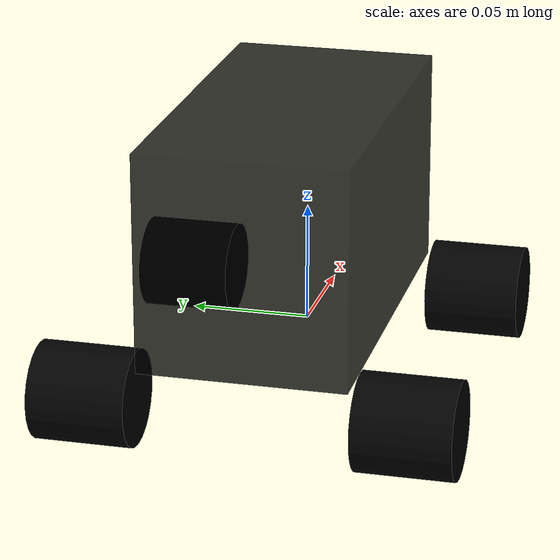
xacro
<?xml version="1.0"?>
<robot xmlns:xacro="http://www.ros.org/wiki/xacro">

    <xacro:include filename="inertial_macros.xacro"/>

    <material name="black">
        <color rgba="0 0 0 1"/>
    </material>

    <material name="grey">
        <color rgba="0 0 0 0.8"/>
    </material>

    <!--    Base Link-->
    <link name="base_link">

    </link>

<!--    Chassis-->
    <joint name="chassis_joint" type="fixed">
        <parent link="base_link"/>
        <child link="chassis"/>
        <origin xyz="-0.1 0 0"/>
    </joint>

    <link name="chassis">
        <visual>
            <origin xyz="0.07 0 0.06"/>
            <geometry>
                <box size="0.16 0.085 0.09"/>
            </geometry>
            <material name="grey"/>
        </visual>
        <collision>
            <origin xyz="0.07 0 0.06"/>
            <geometry>
                <box size="0.16 0.085 0.09"/>
            </geometry>
        </collision>
        <xacro:inertial_box mass="0.5" x="0.16" y="0.085" z="0.09">
            <origin xyz="0.07 0 0.06"/>
        </xacro:inertial_box>
    </link>

    <gazebo reference="chassis">
        <material>Gazebo/Grey</material>
    </gazebo>

<!--Left  wheel  link-->
    <joint name="left_wheel_joint" type="continuous">
        <parent link="base_link"/>
        <child link="left_wheel"/>
        <origin xyz="-0.1 0.065 0"  rpy="-${pi/2} 0 0"/>
        <axis xyz="0 0 1"/>
    </joint>

    <link  name="left_wheel">
        <visual>
            <geometry>
                <cylinder radius="0.02" length="0.04"/>
            </geometry>
            <material name="black"/>
        </visual>
        <collision>
            <geometry>
                <cylinder radius="0.02" length="0.04"/>
            </geometry>
        </collision>
        <xacro:inertial_cylinder mass="0.1" length="0.04" radius="0.02">
            <origin xyz="0 0 0" rpy="0 0 0"/>
        </xacro:inertial_cylinder>
    </link>

    <gazebo reference="left_wheel">
        <material>Gazebo/Black</material>
    </gazebo>

    <!--Right  wheel  link-->
    <joint name="right_wheel_joint" type="continuous">
        <parent link="base_link"/>
        <child link="right_wheel"/>
        <origin xyz="-0.1 -0.065 0"  rpy="${pi/2} 0 0"/>
        <axis xyz="0 0 -1"/>
    </joint>

    <link  name="right_wheel">
        <visual>
            <geometry>
                <cylinder radius="0.02" length="0.04"/>
            </geometry>
            <material name="black"/>
        </visual>
        <collision>
            <geometry>
                <cylinder radius="0.02" length="0.04"/>
            </geometry>
        </collision>
        <xacro:inertial_cylinder mass="0.1" length="0.04" radius="0.02">
            <origin xyz="0 0 0" rpy="0 0 0"/>
        </xacro:inertial_cylinder>
    </link>

    <gazebo reference="right_wheel">
        <material>Gazebo/Black</material>
    </gazebo>

    <!--Left front wheel link-->
    <joint name="left_front_wheel_joint" type="fixed">
        <parent link="base_link"/>
        <child link="left_front_wheel"/>
        <origin xyz="0.05 0.065 0"  rpy="-${pi/2} 0 0"/>
        <axis xyz="0 0 1"/>
    </joint>

    <link  name="left_front_wheel">
        <visual>
            <geometry>
                <cylinder radius="0.02" length="0.04"/>
            </geometry>
            <material name="black"/>
        </visual>
        <collision>v
            <geometry>
                <cylinder radius="0.02" length="0.04"/>
            </geometry>
        </collision>
        <xacro:inertial_cylinder mass="0.1" length="0.04" radius="0.02">
            <origin xyz="0 0 0" rpy="0 0 0"/>
        </xacro:inertial_cylinder>
    </link>

    <gazebo reference="left_front_wheel">
        <material>Gazebo/Black</material>
        <mu1 value="0.001"/>
        <mu2 value="0.001"/>
    </gazebo>

    <!--Right  rear  wheel  link-->
    <joint name="right_front_wheel_joint" type="fixed">
        <parent link="base_link"/>
        <child link="right_front_wheel"/>
        <origin xyz="0.05 -0.065 0"  rpy="${pi/2} 0 0"/>
        <axis xyz="0 0 -1"/>
    </joint>

    <link  name="right_front_wheel">
        <visual>
            <geometry>
                <cylinder radius="0.02" length="0.04"/>
            </geometry>
            <material name="black"/>
        </visual>
        <collision>
            <geometry>
                <cylinder radius="0.02" length="0.04"/>
            </geometry>
        </collision>
        <xacro:inertial_cylinder mass="0.1" length="0.04" radius="0.02">
            <origin xyz="0 0 0" rpy="0 0 0"/>
        </xacro:inertial_cylinder>
    </link>

    <gazebo reference="right_front_wheel">
        <material>Gazebo/Black</material>
        <mu1 value="0.001"/>
        <mu2 value="0.001"/>
    </gazebo>

</robot>

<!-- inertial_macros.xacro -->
<robot xmlns:xacro="http://www.ros.org/wiki/xacro" >

    <!-- Specify some standard inertial calculations https://en.wikipedia.org/wiki/List_of_moments_of_inertia -->
    <!-- These make use of xacro's mathematical functionality -->

    <xacro:macro name="inertial_sphere" params="mass radius *origin">
        <inertial>
            <xacro:insert_block name="origin"/>
            <mass value="${mass}" />
            <inertia ixx="${(2/5) * mass * (radius*radius)}" ixy="0.0" ixz="0.0"
                     iyy="${(2/5) * mass * (radius*radius)}" iyz="0.0"
                     izz="${(2/5) * mass * (radius*radius)}" />
        </inertial>
    </xacro:macro>

    <xacro:macro name="inertial_box" params="mass x y z *origin">
        <inertial>
            <xacro:insert_block name="origin"/>
            <mass value="${mass}" />
            <inertia ixx="${(1/12) * mass * (y*y+z*z)}" ixy="0.0" ixz="0.0"
                     iyy="${(1/12) * mass * (x*x+z*z)}" iyz="0.0"
                     izz="${(1/12) * mass * (x*x+y*y)}" />
        </inertial>
    </xacro:macro>

    <xacro:macro name="inertial_cylinder" params="mass length radius *origin">
        <inertial>
            <xacro:insert_block name="origin"/>
            <mass value="${mass}" />
            <inertia ixx="${(1/12) * mass * (3*radius*radius + length*length)}" ixy="0.0" ixz="0.0"
                     iyy="${(1/12) * mass * (3*radius*radius + length*length)}" iyz="0.0"
                     izz="${(1/2) * mass * (radius*radius)}" />
        </inertial>
    </xacro:macro>

</robot>
